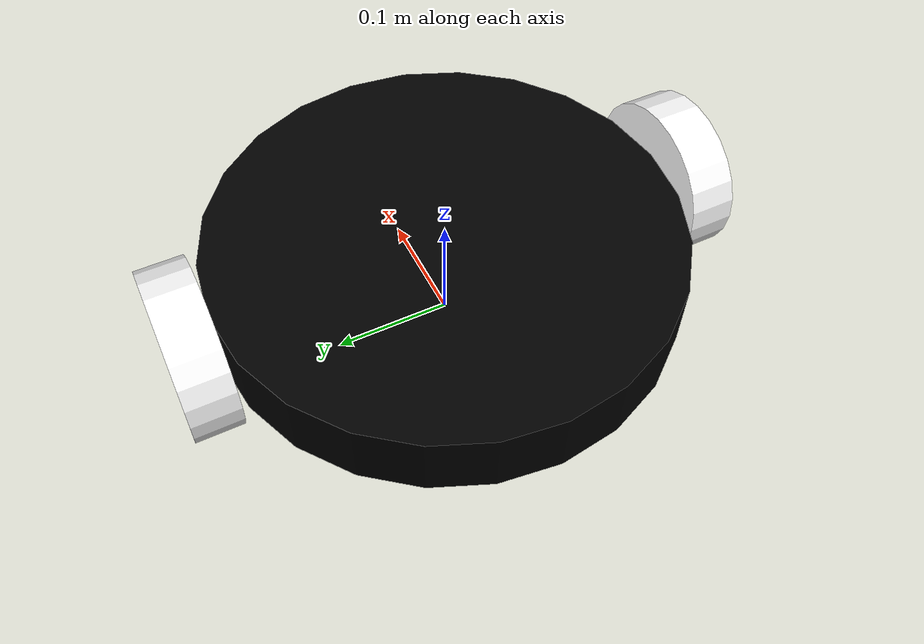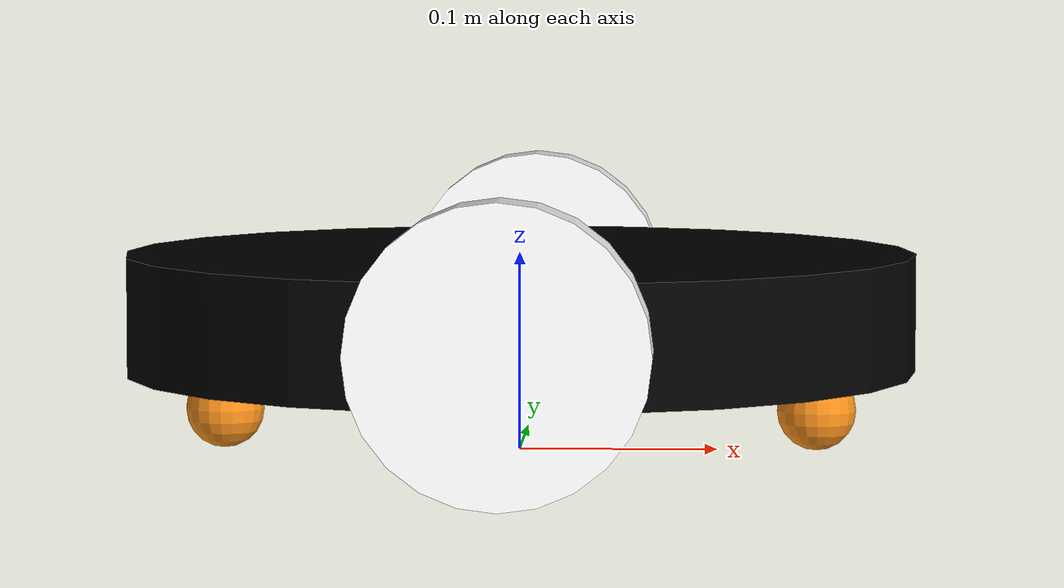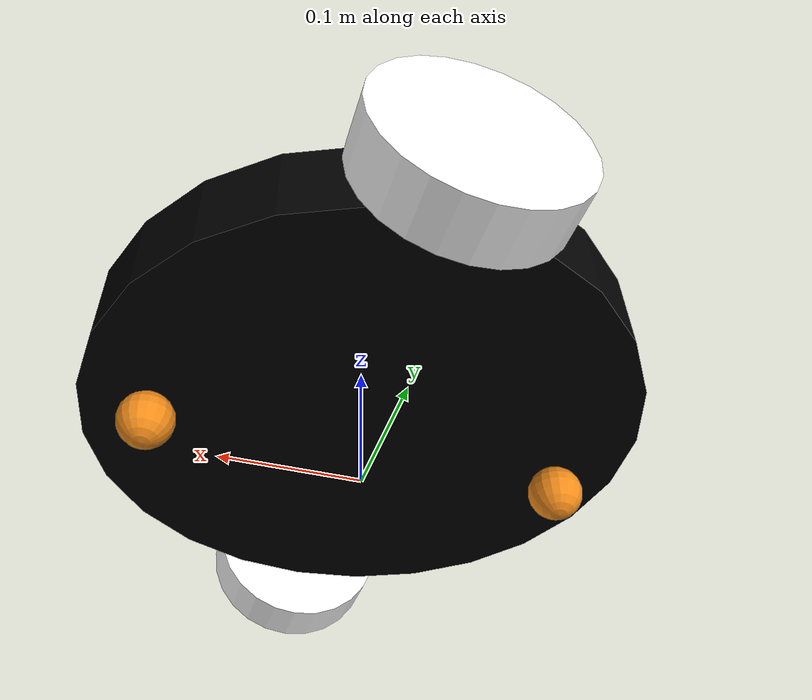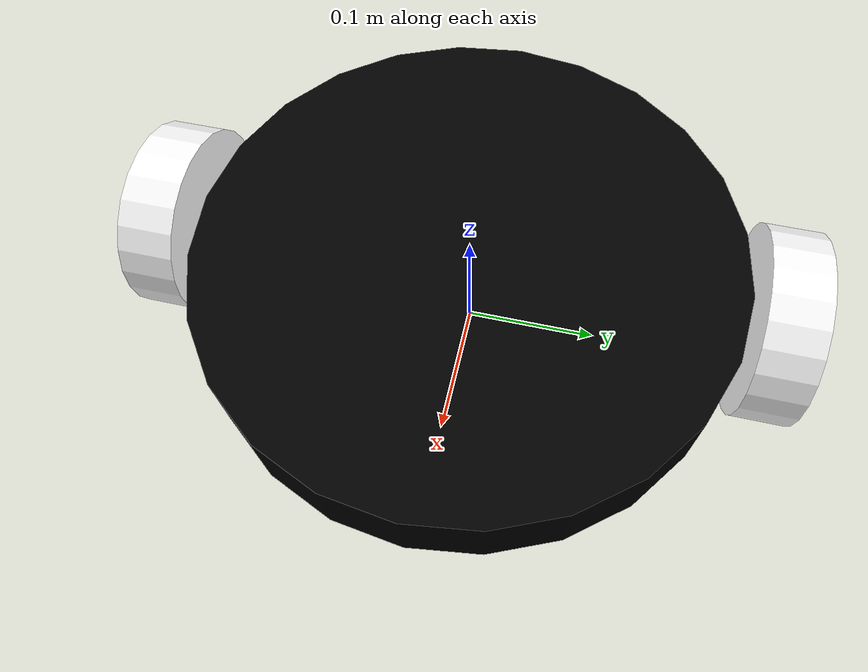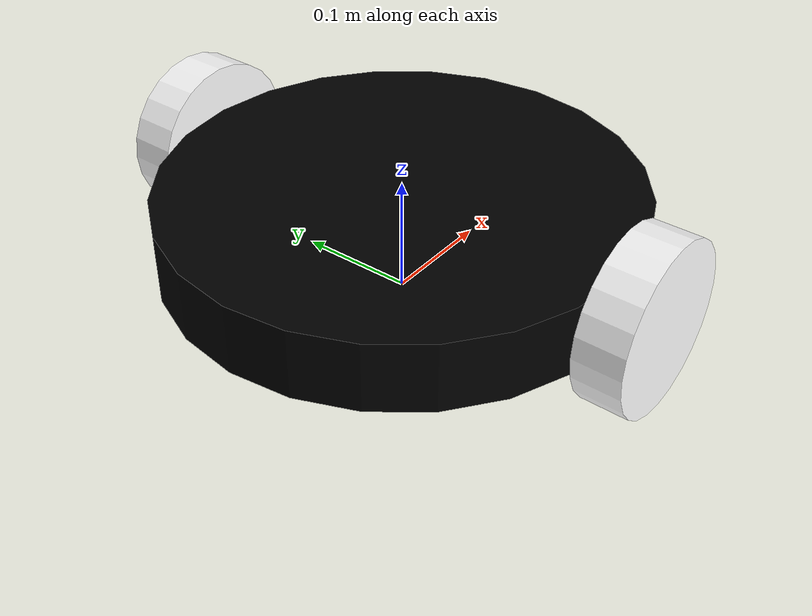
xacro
<?xml version='1.0'?>

<robot name="cylinder_2wheel_base" xmlns:xacro="http://www.ros.org/wiki/xacro">

  <xacro:property name="chassis_length" value="0.06"/>
  <xacro:property name="chassis_radius" value="0.2"/>
  <xacro:property name="wheel_length" value="0.04"/>
  <xacro:property name="wheel_radius" value="0.07"/>

  <xacro:include filename="$(find urdf_dev)/macros.xacro"/>
  <xacro:include filename="$(find urdf_dev)/cylinder_2wheel_base/cylinder_2wheel_base.gazebo"/>

  <!-- prefix:left reflect:-1 -->
  <xacro:macro name="wheel" params="prefix reflect">
    <link name="${prefix}_wheel">
      <visual>
        <geometry>
          <cylinder length="${wheel_length}" radius="${wheel_radius}"/>
        </geometry>
        <!-- relative to joint frame -->
        <origin xyz="0 ${reflect*wheel_length/2} 0" rpy="1.5707 0 0"/>
        <material name="white"/>
      </visual>
      <collision>
        <geometry>
          <cylinder length="${wheel_length}" radius="${wheel_radius}"/>
        </geometry>
        <origin xyz="0 ${reflect*wheel_length/2} 0" rpy="1.5707 0 0"/>
      </collision>
      <xacro:cylinder_inertial m="${3.14*wheel_radius*wheel_radius*wheel_length}" r="${wheel_radius}" l="${wheel_length}">
        <origin xyz="0 ${reflect*wheel_length/2} 0" rpy="1.5707 0 0"/>
      </xacro:cylinder_inertial>
    </link>

    <joint name="chassis_${prefix}_joint" type="continuous">
      <parent link="chassis"/>
      <child link="${prefix}_wheel"/>
      <origin xyz="0 ${reflect*chassis_radius} ${wheel_radius}"/>
      <axis xyz="0 1 0" rpy="0 0 0"/>
      <!--limit effort="10000" velocity="1000"/-->
      <!--joint_properties damping="1.0" friction="1.0"/-->
    </joint>
  </xacro:macro>

  <!-- reflect:-1(back) -->
  <xacro:macro name="caster" params="reflect">
    <visual>
      <geometry>
        <sphere radius="${(wheel_radius-chassis_length/2)/2}"/>
      </geometry>
      <origin xyz="${reflect*chassis_radius/1.33} 0 ${(wheel_radius-chassis_length/2)/2}" rpy="0 0 0"/>
    </visual>
    <collision>
      <geometry>
        <sphere radius="${wheel_radius/2}"/>
      </geometry>
      <origin xyz="${reflect*chassis_radius/1.33} 0 ${(wheel_radius-chassis_length/2)/2}" rpy="0 0 0"/>
      <surface>
        <friction>
          <ode>
            <mu>0</mu>
            <mu2>0</mu2>
            <slip1>1.0</slip1>
            <slip2>1.0</slip2>
          </ode>
        </friction>
      </surface>
    </collision>
    <!-- 0.523599 ~= pi * 4/3 / 8 -->
    <xacro:sphere_inertial m="${0.523599*wheel_radius*wheel_radius*wheel_radius}" r="${wheel_radius/2}">
      <origin xyz="${reflect*chassis_radius/1.33} 0 ${(wheel_radius-chassis_length/2)/2}" rpy="0 0 0"/>
    </xacro:sphere_inertial>
  </xacro:macro>

  <link name="chassis">
    <visual>
      <geometry>
        <cylinder length="${chassis_length}" radius="${chassis_radius}"/>
      </geometry>
      <origin xyz="0 0 ${wheel_radius}" rpy="0 0 0"/>
      <material name="black"/>
    </visual>
    <collision>
      <geometry>
        <cylinder length="${chassis_length}" radius="${chassis_radius}"/>
      </geometry>
      <origin xyz="0 0 ${wheel_radius}" rpy="0 0 0"/>
    </collision>
    <xacro:cylinder_inertial m="${3.14*chassis_radius*chassis_radius*chassis_length}" r="${chassis_radius}" l="${chassis_length}">
      <origin xyz="0 0 ${wheel_radius}" rpy="0 0 0"/>
    </xacro:cylinder_inertial>

    <xacro:caster reflect="-1"/>
    <xacro:caster reflect="1"/>
  </link>

  <xacro:wheel prefix="left" reflect="-1"/>
  <xacro:wheel prefix="right" reflect="1"/>

</robot>

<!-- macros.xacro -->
<robot xmlns:xacro="http://www.ros.org/wiki/xacro">
  <material name="black">
    <color rgba="0.0 0.0 0.0 1.0"/>
  </material>

  <material name="white">
    <color rgba="1.0 1.0 1.0 1.0"/>
  </material>

  <xacro:macro name="cylinder_inertial" params="m r l *origin">
    <inertial>
      <xacro:insert_block name="origin"/>
      <mass value="${m}"/>
      <inertia ixx="${m*(3*r*r+l*l)/12}" ixy="0" ixz="0" iyy="${m*(3*r*r+l*l)/12}" iyz="0" izz="${m*r*r/2}"/>
    </inertial>
  </xacro:macro>

  <xacro:macro name="box_inertial" params="m x y z *origin">
    <inertial>
      <xacro:insert_block name="origin"/>
      <mass value="${m}"/>
      <inertia  ixx="${m*(y*y+z*z)/12}" ixy="0" ixz="0" iyy="${m*(x*x+z*z)/12}" iyz="0" izz="${m*(x*x+z*z)/12}"/>
    </inertial>
  </xacro:macro>

  <xacro:macro name="sphere_inertial" params="m r *origin">
    <inertial>
      <xacro:insert_block name="origin"/>
      <mass value="${m}"/>
      <inertia ixx="${2*m*r*r/5}" ixy="0" ixz="0" iyy="${2*m*r*r/5}" iyz="0" izz="${2*m*r*r/5}"/>
    </inertial>
  </xacro:macro>
</robot>
